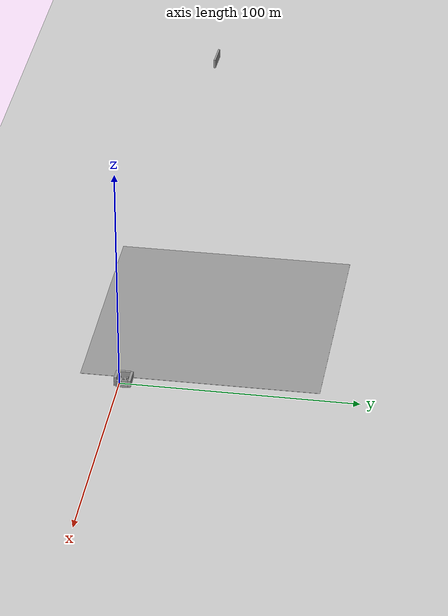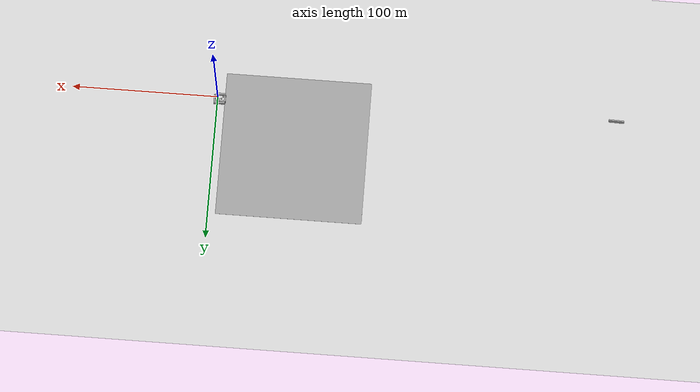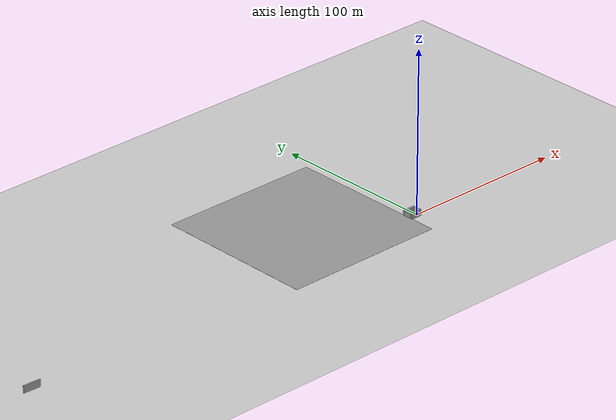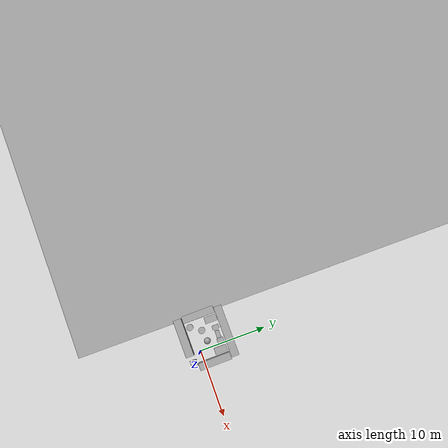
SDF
<sdf version="1.6">
 <world name="default">
  <light name="sun" type="directional">
   <pose>0 0 10 0 -0 0</pose>
   <diffuse>0.8 0.8 0.8 1</diffuse>
   <specular>0.2 0.2 0.2 1</specular>
   <attenuation>
    <range>1000</range>
    <constant>0.9</constant>
    <linear>0.01</linear>
    <quadratic>0.001</quadratic>
   </attenuation>
   <direction>-0.5 0.1 -0.9</direction>
  </light>
  <model name="ground_plane">
   <static>1</static>
   <link name="link">
    <collision name="collision">
     <geometry><plane><normal>0 0 1</normal><size>100 100</size></plane></geometry>
     <surface><friction><ode><mu>100</mu><mu2>50</mu2></ode></friction></surface>
    </collision>
    <visual name="visual">
     <cast_shadows>0</cast_shadows>
     <geometry><plane><normal>0 0 1</normal><size>100 100</size></plane></geometry>
     <material>
      <script><uri>file://media/materials/scripts/gazebo.material</uri><name>Gazebo/Grey</name></script>
     </material>
    </visual>
   </link>
  </model>
  <gravity>0 0 -9.8</gravity>
  <magnetic_field>6e-06 2.3e-05 -4.2e-05</magnetic_field>
  <atmosphere type="adiabatic"/>
  <physics name="default_physics" default="0" type="ode">
   <max_step_size>0.001</max_step_size>
   <real_time_factor>1</real_time_factor>
   <real_time_update_rate>1000</real_time_update_rate>
  </physics>
  <scene><ambient>0.4 0.4 0.4 1</ambient><background>0.7 0.7 0.7 1</background><shadows>1</shadows></scene>
  <spherical_coordinates>
   <surface_model>EARTH_WGS84</surface_model>
   <latitude_deg>0</latitude_deg>
   <longitude_deg>0</longitude_deg>
   <elevation>0</elevation>
   <heading_deg>0</heading_deg>
  </spherical_coordinates>
  <model name="unit_box">
   <pose>0.781867 2.87488 0.206702 0 0 -0.00013</pose>
   <link name="link">
    <inertial>
     <mass>1</mass>
     <inertia>
      <ixx>0.166667</ixx>
      <ixy>0</ixy>
      <ixz>0</ixz>
      <iyy>0.166667</iyy>
      <iyz>0</iyz>
      <izz>0.166667</izz>
     </inertia>
    </inertial>
    <collision name="collision"><geometry><box><size>1 1.85664 0.413405</size></box></geometry></collision>
    <visual name="visual">
     <geometry><box><size>1 1.85664 0.413405</size></box></geometry>
     <material>
      <script><name>Gazebo/Grey</name><uri>file://media/materials/scripts/gazebo.material</uri></script>
     </material>
    </visual>
   </link>
  </model>
  <model name="unit_box_0">
   <pose>-1.52762 3.26382 1.22027 0 -1e-06 0.001821</pose>
   <link name="link">
    <inertial>
     <mass>1</mass>
     <inertia>
      <ixx>0.166667</ixx>
      <ixy>0</ixy>
      <ixz>0</ixz>
      <iyy>0.166667</iyy>
      <iyz>0</iyz>
      <izz>0.166667</izz>
     </inertia>
    </inertial>
    <collision name="collision"><geometry><box><size>1.04614 0.61386 2.44055</size></box></geometry></collision>
    <visual name="visual">
     <geometry><box><size>1.04614 0.61386 2.44055</size></box></geometry>
     <material>
      <script><name>Gazebo/Grey</name><uri>file://media/materials/scripts/gazebo.material</uri></script>
     </material>
    </visual>
   </link>
  </model>
  <model name="unit_box_1_clone">
   <pose>-2.54252 3.25622 0.315597 0 1e-06 0.002174</pose>
   <link name="link">
    <inertial>
     <mass>1</mass>
     <inertia>
      <ixx>0.166667</ixx>
      <ixy>0</ixy>
      <ixz>0</ixz>
      <iyy>0.166667</iyy>
      <iyz>0</iyz>
      <izz>0.166667</izz>
     </inertia>
    </inertial>
    <collision name="collision"><geometry><box><size>0.67948 1 0.631198</size></box></geometry></collision>
    <visual name="visual">
     <geometry><box><size>0.67948 1 0.631198</size></box></geometry>
     <material>
      <script><name>Gazebo/Grey</name><uri>file://media/materials/scripts/gazebo.material</uri></script>
     </material>
    </visual>
   </link>
  </model>
  <model name="unit_box_2">
   <pose>-274.472 -2.5306 2.13236 -0.000172 0.004503 -0.038072</pose>
   <link name="link">
    <inertial>
     <mass>1</mass>
     <inertia>
      <ixx>0.166667</ixx>
      <ixy>0</ixy>
      <ixz>0</ixz>
      <iyy>0.166667</iyy>
      <iyz>0</iyz>
      <izz>0.166667</izz>
     </inertia>
    </inertial>
    <collision name="collision"><geometry><box><size>10.6307 0.864185 4.31218</size></box></geometry></collision>
    <visual name="visual">
     <geometry><box><size>10.6307 0.864185 4.31218</size></box></geometry>
     <material>
      <script><name>Gazebo/Grey</name><uri>file://media/materials/scripts/gazebo.material</uri></script>
     </material>
    </visual>
   </link>
  </model>
  <model name="ground_plane_1">
   <static>1</static>
   <link name="link">
    <collision name="collision">
     <geometry><plane><normal>0 0 1</normal><size>100 100</size></plane></geometry>
     <surface><friction><ode><mu>100</mu><mu2>50</mu2></ode></friction></surface>
    </collision>
    <visual name="visual">
     <cast_shadows>0</cast_shadows>
     <geometry><plane><normal>0 0 1</normal><size>100 100</size></plane></geometry>
     <material>
      <script><uri>file://media/materials/scripts/gazebo.material</uri><name>Gazebo/Grey</name></script>
     </material>
    </visual>
   </link>
   <pose>-55.1214 32.7178 0 0 -0 0</pose>
  </model>
  <model name="unit_box_3">
   <pose>1.98833 1.55956 1.47433 0.000162 -2e-06 0.010017</pose>
   <link name="link">
    <inertial>
     <mass>1</mass>
     <inertia>
      <ixx>0.166667</ixx>
      <ixy>0</ixy>
      <ixz>0</ixz>
      <iyy>0.166667</iyy>
      <iyz>0</iyz>
      <izz>0.166667</izz>
     </inertia>
    </inertial>
    <collision name="collision"><geometry><box><size>1.05856 4.78123 2.94944</size></box></geometry></collision>
    <visual name="visual">
     <geometry><box><size>1.05856 4.78123 2.94944</size></box></geometry>
     <material>
      <script><name>Gazebo/Grey</name><uri>file://media/materials/scripts/gazebo.material</uri></script>
     </material>
    </visual>
   </link>
  </model>
  <model name="unit_box_3_clone">
   <pose>-5.12325 1.48417 1.47432 0.000167 -2e-06 0.00996</pose>
   <link name="link">
    <inertial>
     <mass>1</mass>
     <inertia>
      <ixx>0.166667</ixx>
      <ixy>0</ixy>
      <ixz>0</ixz>
      <iyy>0.166667</iyy>
      <iyz>0</iyz>
      <izz>0.166667</izz>
     </inertia>
    </inertial>
    <collision name="collision"><geometry><box><size>1.05856 4.80357 2.94944</size></box></geometry></collision>
    <visual name="visual">
     <geometry><box><size>1.05856 4.80357 2.94944</size></box></geometry>
     <material>
      <script><name>Gazebo/Grey</name><uri>file://media/materials/scripts/gazebo.material</uri></script>
     </material>
    </visual>
   </link>
  </model>
  <model name="unit_box_3_clone_0">
   <pose>-1.54255 4.55368 1.46796 -0.001779 1.1e-05 1.57684</pose>
   <link name="link">
    <inertial>
     <mass>1</mass>
     <inertia>
      <ixx>0.166667</ixx>
      <ixy>0</ixy>
      <ixz>0</ixz>
      <iyy>0.166667</iyy>
      <iyz>0</iyz>
      <izz>0.166667</izz>
     </inertia>
    </inertial>
    <collision name="collision"><geometry><box><size>1.14142 7.62028 2.94944</size></box></geometry></collision>
    <visual name="visual">
     <geometry><box><size>1.14142 7.62028 2.94944</size></box></geometry>
     <material>
      <script><name>Gazebo/Grey</name><uri>file://media/materials/scripts/gazebo.material</uri></script>
     </material>
    </visual>
   </link>
  </model>
  <model name="unit_box_3_clone_0_clone">
   <pose>-2.6474 -1.61275 1.47354 -0.000418 2e-06 1.57474</pose>
   <link name="link">
    <inertial>
     <mass>1</mass>
     <inertia>
      <ixx>0.166667</ixx>
      <ixy>0</ixy>
      <ixz>0</ixz>
      <iyy>0.166667</iyy>
      <iyz>0</iyz>
      <izz>0.166667</izz>
     </inertia>
    </inertial>
    <collision name="collision"><geometry><box><size>1.20204 5.61496 2.94943</size></box></geometry></collision>
    <visual name="visual">
     <geometry><box><size>1.20204 5.61496 2.94943</size></box></geometry>
     <material>
      <script><name>Gazebo/Grey</name><uri>file://media/materials/scripts/gazebo.material</uri></script>
     </material>
    </visual>
   </link>
  </model>
  <model name="unit_box_clone_0">
   <pose>-3.93242 2.99023 0.206702 0 0 -0.000128</pose>
   <link name="link">
    <inertial>
     <mass>1</mass>
     <inertia>
      <ixx>0.166667</ixx>
      <ixy>0</ixy>
      <ixz>0</ixz>
      <iyy>0.166667</iyy>
      <iyz>0</iyz>
      <izz>0.166667</izz>
     </inertia>
    </inertial>
    <collision name="collision"><geometry><box><size>1 1.85664 0.413405</size></box></geometry></collision>
    <visual name="visual">
     <geometry><box><size>1 1.85664 0.413405</size></box></geometry>
     <material>
      <script><name>Gazebo/Grey</name><uri>file://media/materials/scripts/gazebo.material</uri></script>
     </material>
    </visual>
   </link>
  </model>
  <model name="unit_box_1_clone_clone">
   <pose>-0.52904 3.29524 0.315591 0 -1e-06 0.002176</pose>
   <link name="link">
    <inertial>
     <mass>1</mass>
     <inertia>
      <ixx>0.166667</ixx>
      <ixy>0</ixy>
      <ixz>0</ixz>
      <iyy>0.166667</iyy>
      <iyz>0</iyz>
      <izz>0.166667</izz>
     </inertia>
    </inertial>
    <collision name="collision"><geometry><box><size>0.67948 1 0.631198</size></box></geometry></collision>
    <visual name="visual">
     <geometry><box><size>0.67948 1 0.631198</size></box></geometry>
     <material>
      <script><name>Gazebo/Grey</name><uri>file://media/materials/scripts/gazebo.material</uri></script>
     </material>
    </visual>
   </link>
  </model>
  <model name="unit_cylinder">
   <pose>-2.77687 1.19755 0.499993 3e-06 1e-06 -0</pose>
   <link name="link">
    <inertial>
     <mass>1</mass>
     <inertia><ixx>0.145833</ixx><ixy>0</ixy><ixz>0</ixz><iyy>0.145833</iyy><iyz>0</iyz><izz>0.125</izz></inertia>
    </inertial>
    <collision name="collision">
     <geometry><cylinder><radius>0.5</radius><length>1</length></cylinder></geometry>
    </collision>
    <visual name="visual">
     <geometry><cylinder><radius>0.5</radius><length>1</length></cylinder></geometry>
     <material>
      <script><name>Gazebo/Grey</name><uri>file://media/materials/scripts/gazebo.material</uri></script>
     </material>
    </visual>
   </link>
  </model>
  <model name="unit_cylinder_0">
   <pose>-3.78064 -0.306081 0.499995 -2e-06 -1e-06 0</pose>
   <link name="link">
    <inertial>
     <mass>1</mass>
     <inertia><ixx>0.145833</ixx><ixy>0</ixy><ixz>0</ixz><iyy>0.145833</iyy><iyz>0</iyz><izz>0.125</izz></inertia>
    </inertial>
    <collision name="collision">
     <geometry><cylinder><radius>0.5</radius><length>1</length></cylinder></geometry>
    </collision>
    <visual name="visual">
     <geometry><cylinder><radius>0.5</radius><length>1</length></cylinder></geometry>
     <material>
      <script><name>Gazebo/Grey</name><uri>file://media/materials/scripts/gazebo.material</uri></script>
     </material>
    </visual>
   </link>
  </model>
  <model name="unit_box_1">
   <pose>1.35276 -1.48862 0.500002 -4e-06 -0 -0.001164</pose>
   <link name="link">
    <inertial>
     <mass>1</mass>
     <inertia>
      <ixx>0.166667</ixx>
      <ixy>0</ixy>
      <ixz>0</ixz>
      <iyy>0.166667</iyy>
      <iyz>0</iyz>
      <izz>0.166667</izz>
     </inertia>
    </inertial>
    <collision name="collision"><geometry><box><size>1 1 1</size></box></geometry></collision>
    <visual name="visual">
     <geometry><box><size>1 1 1</size></box></geometry>
     <material>
      <script><name>Gazebo/Grey</name><uri>file://media/materials/scripts/gazebo.material</uri></script>
     </material>
    </visual>
   </link>
  </model>
  <model name="unit_sphere">
   <pose>-1.07123 1.45971 0.49999 0 -0 0</pose>
   <link name="link">
    <inertial>
     <mass>1</mass>
     <inertia><ixx>0.1</ixx><ixy>0</ixy><ixz>0</ixz><iyy>0.1</iyy><iyz>0</iyz><izz>0.1</izz></inertia>
    </inertial>
    <collision name="collision"><geometry><sphere><radius>0.5</radius></sphere></geometry></collision>
    <visual name="visual">
     <geometry><sphere><radius>0.5</radius></sphere></geometry>
     <material>
      <script><name>Gazebo/Grey</name><uri>file://media/materials/scripts/gazebo.material</uri></script>
     </material>
    </visual>
   </link>
  </model>
 </world>
</sdf>
